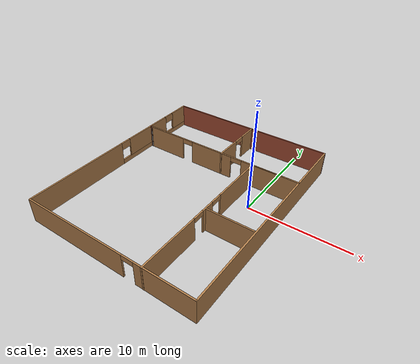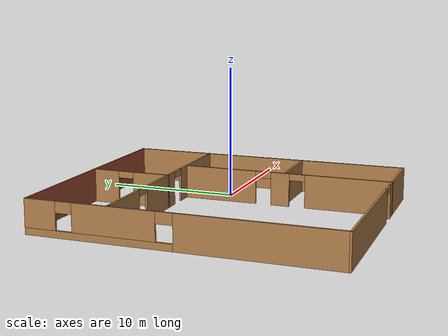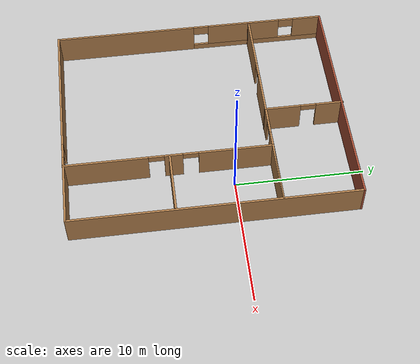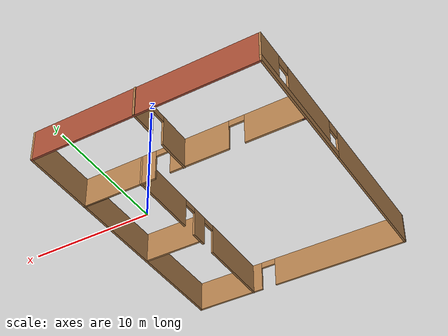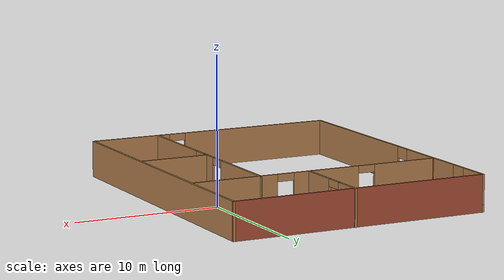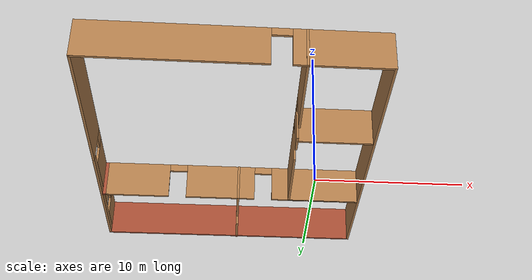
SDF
<?xml version='1.0'?>
<sdf version='1.6'>
  <model name='Apartment_plan'>
    <pose frame=''>-5.60454 -1.80062 0 0 -0 0</pose>
    <link name='Wall_11'>
      <collision name='Wall_11_Collision'>
        <geometry>
          <box>
            <size>18 0.15 2.5</size>
          </box>
        </geometry>
        <pose frame=''>0 0 1.25 0 -0 0</pose>
      </collision>
      <visual name='Wall_11_Visual'>
        <pose frame=''>0 0 1.25 0 -0 0</pose>
        <geometry>
          <box>
            <size>18 0.15 2.5</size>
          </box>
        </geometry>
        <material>
          <script>
            <uri>file://media/materials/scripts/gazebo.material</uri>
            <name>Gazebo/Bricks</name>
          </script>
          <ambient>0.996078 0.47451 0.0196078 1</ambient>
        </material>
        <meta>
          <layer>0</layer>
        </meta>
      </visual>
      <pose frame=''>0 10.9013 0 0 -0 0</pose>
    </link>
    <link name='Wall_13'>
      <collision name='Wall_13_Collision'>
        <geometry>
          <box>
            <size>22 0.15 2.5</size>
          </box>
        </geometry>
        <pose frame=''>0 0 1.25 0 -0 0</pose>
      </collision>
      <visual name='Wall_13_Visual'>
        <pose frame=''>0 0 1.25 0 -0 0</pose>
        <geometry>
          <box>
            <size>22 0.15 2.5</size>
          </box>
        </geometry>
        <material>
          <script>
            <uri>file://media/materials/scripts/gazebo.material</uri>
            <name>Gazebo/Wood</name>
          </script>
          <ambient>1 1 1 1</ambient>
        </material>
        <meta>
          <layer>0</layer>
        </meta>
      </visual>
      <pose frame=''>8.925 -0.023674 0 0 -0 1.5708</pose>
    </link>
    <link name='Wall_15'>
      <pose frame=''>4.04673 -3.03739 0 0 -0 1.5708</pose>
      <visual name='Wall_15_Visual_0'>
        <pose frame=''>-4.7743 0 1.25 0 -0 0</pose>
        <geometry>
          <box>
            <size>6.4514 0.15 2.5</size>
          </box>
        </geometry>
        <material>
          <script>
            <uri>file://media/materials/scripts/gazebo.material</uri>
            <name>Gazebo/Wood</name>
          </script>
          <ambient>1 1 1 1</ambient>
        </material>
        <meta>
          <layer>0</layer>
        </meta>
      </visual>
      <collision name='Wall_15_Collision_0'>
        <geometry>
          <box>
            <size>6.4514 0.15 2.5</size>
          </box>
        </geometry>
        <pose frame=''>-4.7743 0 1.25 0 -0 0</pose>
      </collision>
      <visual name='Wall_15_Visual_1'>
        <pose frame=''>0.354806 0 1.25 0 -0 0</pose>
        <geometry>
          <box>
            <size>1.40682 0.15 2.5</size>
          </box>
        </geometry>
        <material>
          <script>
            <uri>file://media/materials/scripts/gazebo.material</uri>
            <name>Gazebo/Wood</name>
          </script>
          <ambient>1 1 1 1</ambient>
        </material>
        <meta>
          <layer>0</layer>
        </meta>
      </visual>
      <collision name='Wall_15_Collision_1'>
        <geometry>
          <box>
            <size>1.40682 0.15 2.5</size>
          </box>
        </geometry>
        <pose frame=''>0.354806 0 1.25 0 -0 0</pose>
      </collision>
      <visual name='Wall_15_Visual_2'>
        <pose frame=''>5.12911 0 1.25 0 -0 0</pose>
        <geometry>
          <box>
            <size>5.74179 0.15 2.5</size>
          </box>
        </geometry>
        <material>
          <script>
            <uri>file://media/materials/scripts/gazebo.material</uri>
            <name>Gazebo/Wood</name>
          </script>
          <ambient>1 1 1 1</ambient>
        </material>
        <meta>
          <layer>0</layer>
        </meta>
      </visual>
      <collision name='Wall_15_Collision_2'>
        <geometry>
          <box>
            <size>5.74179 0.15 2.5</size>
          </box>
        </geometry>
        <pose frame=''>5.12911 0 1.25 0 -0 0</pose>
      </collision>
      <visual name='Wall_15_Visual_3'>
        <pose frame=''>-0.948604 0 2.25 0 -0 0</pose>
        <geometry>
          <box>
            <size>1.2 0.15 0.5</size>
          </box>
        </geometry>
        <material>
          <script>
            <uri>file://media/materials/scripts/gazebo.material</uri>
            <name>Gazebo/Wood</name>
          </script>
          <ambient>1 1 1 1</ambient>
        </material>
        <meta>
          <layer>0</layer>
        </meta>
      </visual>
      <collision name='Wall_15_Collision_3'>
        <geometry>
          <box>
            <size>1.2 0.15 0.5</size>
          </box>
        </geometry>
        <pose frame=''>-0.948604 0 2.25 0 -0 0</pose>
      </collision>
      <visual name='Wall_15_Visual_4'>
        <pose frame=''>1.65821 0 2.25 0 -0 0</pose>
        <geometry>
          <box>
            <size>1.2 0.15 0.5</size>
          </box>
        </geometry>
        <material>
          <script>
            <uri>file://media/materials/scripts/gazebo.material</uri>
            <name>Gazebo/Wood</name>
          </script>
          <ambient>1 1 1 1</ambient>
        </material>
        <meta>
          <layer>0</layer>
        </meta>
      </visual>
      <collision name='Wall_15_Collision_4'>
        <geometry>
          <box>
            <size>1.2 0.15 0.5</size>
          </box>
        </geometry>
        <pose frame=''>1.65821 0 2.25 0 -0 0</pose>
      </collision>
    </link>
    <link name='Wall_16'>
      <collision name='Wall_16_Collision'>
        <geometry>
          <box>
            <size>5 0.15 2.5</size>
          </box>
        </geometry>
        <pose frame=''>0 0 1.25 0 -0 0</pose>
      </collision>
      <visual name='Wall_16_Visual'>
        <pose frame=''>0 0 1.25 0 -0 0</pose>
        <geometry>
          <box>
            <size>5 0.15 2.5</size>
          </box>
        </geometry>
        <material>
          <script>
            <uri>file://media/materials/scripts/gazebo.material</uri>
            <name>Gazebo/Wood</name>
          </script>
          <ambient>1 1 1 1</ambient>
        </material>
        <meta>
          <layer>0</layer>
        </meta>
      </visual>
      <pose frame=''>6.47173 4.88761 0 0 -0 0</pose>
    </link>
    <link name='Wall_17'>
      <pose frame=''>0.096731 4.88761 0 0 -0 3.14159</pose>
      <visual name='Wall_17_Visual_0'>
        <pose frame=''>-5.80484 0 1.25 0 -0 0</pose>
        <geometry>
          <box>
            <size>6.14032 0.15 2.5</size>
          </box>
        </geometry>
        <material>
          <script>
            <uri>file://media/materials/scripts/gazebo.material</uri>
            <name>Gazebo/Wood</name>
          </script>
          <ambient>0.533333 0.541176 0.521569 1</ambient>
        </material>
        <meta>
          <layer>0</layer>
        </meta>
      </visual>
      <collision name='Wall_17_Collision_0'>
        <geometry>
          <box>
            <size>6.14032 0.15 2.5</size>
          </box>
        </geometry>
        <pose frame=''>-5.80484 0 1.25 0 -0 0</pose>
      </collision>
      <visual name='Wall_17_Visual_1'>
        <pose frame=''>0.844546 0 1.25 0 -0 0</pose>
        <geometry>
          <box>
            <size>4.75844 0.15 2.5</size>
          </box>
        </geometry>
        <material>
          <script>
            <uri>file://media/materials/scripts/gazebo.material</uri>
            <name>Gazebo/Wood</name>
          </script>
          <ambient>0.533333 0.541176 0.521569 1</ambient>
        </material>
        <meta>
          <layer>0</layer>
        </meta>
      </visual>
      <collision name='Wall_17_Collision_1'>
        <geometry>
          <box>
            <size>4.75844 0.15 2.5</size>
          </box>
        </geometry>
        <pose frame=''>0.844546 0 1.25 0 -0 0</pose>
      </collision>
      <visual name='Wall_17_Visual_2'>
        <pose frame=''>6.64938 0 1.25 0 -0 0</pose>
        <geometry>
          <box>
            <size>4.45123 0.15 2.5</size>
          </box>
        </geometry>
        <material>
          <script>
            <uri>file://media/materials/scripts/gazebo.material</uri>
            <name>Gazebo/Wood</name>
          </script>
          <ambient>0.533333 0.541176 0.521569 1</ambient>
        </material>
        <meta>
          <layer>0</layer>
        </meta>
      </visual>
      <collision name='Wall_17_Collision_2'>
        <geometry>
          <box>
            <size>4.45123 0.15 2.5</size>
          </box>
        </geometry>
        <pose frame=''>6.64938 0 1.25 0 -0 0</pose>
      </collision>
      <visual name='Wall_17_Visual_3'>
        <pose frame=''>-2.13468 0 2.25 0 -0 0</pose>
        <geometry>
          <box>
            <size>1.2 0.15 0.5</size>
          </box>
        </geometry>
        <material>
          <script>
            <uri>file://media/materials/scripts/gazebo.material</uri>
            <name>Gazebo/Wood</name>
          </script>
          <ambient>0.533333 0.541176 0.521569 1</ambient>
        </material>
        <meta>
          <layer>0</layer>
        </meta>
      </visual>
      <collision name='Wall_17_Collision_3'>
        <geometry>
          <box>
            <size>1.2 0.15 0.5</size>
          </box>
        </geometry>
        <pose frame=''>-2.13468 0 2.25 0 -0 0</pose>
      </collision>
      <visual name='Wall_17_Visual_4'>
        <pose frame=''>3.82377 0 2.25 0 -0 0</pose>
        <geometry>
          <box>
            <size>1.2 0.15 0.5</size>
          </box>
        </geometry>
        <material>
          <script>
            <uri>file://media/materials/scripts/gazebo.material</uri>
            <name>Gazebo/Wood</name>
          </script>
          <ambient>0.533333 0.541176 0.521569 1</ambient>
        </material>
        <meta>
          <layer>0</layer>
        </meta>
      </visual>
      <collision name='Wall_17_Collision_4'>
        <geometry>
          <box>
            <size>1.2 0.15 0.5</size>
          </box>
        </geometry>
        <pose frame=''>3.82377 0 2.25 0 -0 0</pose>
      </collision>
    </link>
    <link name='Wall_18'>
      <collision name='Wall_18_Collision'>
        <geometry>
          <box>
            <size>0.15 0.15 2.5</size>
          </box>
        </geometry>
        <pose frame=''>0 0 1.25 0 -0 0</pose>
      </collision>
      <visual name='Wall_18_Visual'>
        <pose frame=''>0 0 1.25 0 -0 0</pose>
        <geometry>
          <box>
            <size>0.15 0.15 2.5</size>
          </box>
        </geometry>
        <material>
          <script>
            <uri>file://media/materials/scripts/gazebo.material</uri>
            <name>Gazebo/Grey</name>
          </script>
          <ambient>1 1 1 1</ambient>
        </material>
        <meta>
          <layer>0</layer>
        </meta>
      </visual>
      <pose frame=''>-8.70327 4.88761 0 0 -0 0</pose>
    </link>
    <link name='Wall_19'>
      <collision name='Wall_19_Collision'>
        <geometry>
          <box>
            <size>0.25 0.15 2.5</size>
          </box>
        </geometry>
        <pose frame=''>0 0 1.25 0 -0 0</pose>
      </collision>
      <visual name='Wall_19_Visual'>
        <pose frame=''>0 0 1.25 0 -0 0</pose>
        <geometry>
          <box>
            <size>0.25 0.15 2.5</size>
          </box>
        </geometry>
        <material>
          <script>
            <uri>file://media/materials/scripts/gazebo.material</uri>
            <name>Gazebo/Bricks</name>
          </script>
          <ambient>1 1 1 1</ambient>
        </material>
        <meta>
          <layer>0</layer>
        </meta>
      </visual>
      <pose frame=''>-8.75327 4.88761 0 0 -0 3.14159</pose>
    </link>
    <link name='Wall_21'>
      <pose frame=''>0.498992 7.91239 0 0 -0 1.5708</pose>
      <visual name='Wall_21_Visual_0'>
        <pose frame=''>-1.69364 0 1.25 0 -0 0</pose>
        <geometry>
          <box>
            <size>2.86272 0.15 2.5</size>
          </box>
        </geometry>
        <material>
          <script>
            <uri>file://media/materials/scripts/gazebo.material</uri>
            <name>Gazebo/Wood</name>
          </script>
          <ambient>1 1 1 1</ambient>
        </material>
        <meta>
          <layer>0</layer>
        </meta>
      </visual>
      <collision name='Wall_21_Collision_0'>
        <geometry>
          <box>
            <size>2.86272 0.15 2.5</size>
          </box>
        </geometry>
        <pose frame=''>-1.69364 0 1.25 0 -0 0</pose>
      </collision>
      <visual name='Wall_21_Visual_1'>
        <pose frame=''>2.03136 0 1.25 0 -0 0</pose>
        <geometry>
          <box>
            <size>2.18729 0.15 2.5</size>
          </box>
        </geometry>
        <material>
          <script>
            <uri>file://media/materials/scripts/gazebo.material</uri>
            <name>Gazebo/Wood</name>
          </script>
          <ambient>1 1 1 1</ambient>
        </material>
        <meta>
          <layer>0</layer>
        </meta>
      </visual>
      <collision name='Wall_21_Collision_1'>
        <geometry>
          <box>
            <size>2.18729 0.15 2.5</size>
          </box>
        </geometry>
        <pose frame=''>2.03136 0 1.25 0 -0 0</pose>
      </collision>
      <visual name='Wall_21_Visual_2'>
        <pose frame=''>0.337715 0 2.25 0 -0 0</pose>
        <geometry>
          <box>
            <size>1.2 0.15 0.5</size>
          </box>
        </geometry>
        <material>
          <script>
            <uri>file://media/materials/scripts/gazebo.material</uri>
            <name>Gazebo/Wood</name>
          </script>
          <ambient>1 1 1 1</ambient>
        </material>
        <meta>
          <layer>0</layer>
        </meta>
      </visual>
      <collision name='Wall_21_Collision_2'>
        <geometry>
          <box>
            <size>1.2 0.15 0.5</size>
          </box>
        </geometry>
        <pose frame=''>0.337715 0 2.25 0 -0 0</pose>
      </collision>
    </link>
    <link name='Wall_23'>
      <collision name='Wall_23_Collision'>
        <geometry>
          <box>
            <size>4.75 0.15 2.5</size>
          </box>
        </geometry>
        <pose frame=''>0 0 1.25 0 -0 0</pose>
      </collision>
      <visual name='Wall_23_Visual'>
        <pose frame=''>0 0 1.25 0 -0 0</pose>
        <geometry>
          <box>
            <size>4.75 0.15 2.5</size>
          </box>
        </geometry>
        <material>
          <script>
            <uri>file://media/materials/scripts/gazebo.material</uri>
            <name>Gazebo/Wood</name>
          </script>
          <ambient>1 1 1 1</ambient>
        </material>
        <meta>
          <layer>0</layer>
        </meta>
      </visual>
      <pose frame=''>6.44662 -2.97518 0 0 -0 0</pose>
    </link>
    <link name='Wall_7'>
      <pose frame=''>0 -10.9487 0 0 -0 0</pose>
      <visual name='Wall_7_Visual_0'>
        <pose frame=''>-3.4981 0 1.25 0 -0 0</pose>
        <geometry>
          <box>
            <size>11.0038 0.15 2.5</size>
          </box>
        </geometry>
        <material>
          <script>
            <uri>file://media/materials/scripts/gazebo.material</uri>
            <name>Gazebo/Wood</name>
          </script>
          <ambient>1 1 1 1</ambient>
        </material>
        <meta>
          <layer>0</layer>
        </meta>
      </visual>
      <collision name='Wall_7_Collision_0'>
        <geometry>
          <box>
            <size>11.0038 0.15 2.5</size>
          </box>
        </geometry>
        <pose frame=''>-3.4981 0 1.25 0 -0 0</pose>
      </collision>
      <visual name='Wall_7_Visual_1'>
        <pose frame=''>6.10191 0 1.25 0 -0 0</pose>
        <geometry>
          <box>
            <size>5.79619 0.15 2.5</size>
          </box>
        </geometry>
        <material>
          <script>
            <uri>file://media/materials/scripts/gazebo.material</uri>
            <name>Gazebo/Wood</name>
          </script>
          <ambient>1 1 1 1</ambient>
        </material>
        <meta>
          <layer>0</layer>
        </meta>
      </visual>
      <collision name='Wall_7_Collision_1'>
        <geometry>
          <box>
            <size>5.79619 0.15 2.5</size>
          </box>
        </geometry>
        <pose frame=''>6.10191 0 1.25 0 -0 0</pose>
      </collision>
      <visual name='Wall_7_Visual_2'>
        <pose frame=''>2.60381 0 2.25 0 -0 0</pose>
        <geometry>
          <box>
            <size>1.2 0.15 0.5</size>
          </box>
        </geometry>
        <material>
          <script>
            <uri>file://media/materials/scripts/gazebo.material</uri>
            <name>Gazebo/Wood</name>
          </script>
          <ambient>1 1 1 1</ambient>
        </material>
        <meta>
          <layer>0</layer>
        </meta>
      </visual>
      <collision name='Wall_7_Collision_2'>
        <geometry>
          <box>
            <size>1.2 0.15 0.5</size>
          </box>
        </geometry>
        <pose frame=''>2.60381 0 2.25 0 -0 0</pose>
      </collision>
    </link>
    <link name='Wall_9'>
      <pose frame=''>-8.925 -0.023674 0 0 -0 1.5708</pose>
      <visual name='Wall_9_Visual_0'>
        <pose frame=''>-5.35285 0 1.25 0 -0 0</pose>
        <geometry>
          <box>
            <size>11.2943 0.15 2.5</size>
          </box>
        </geometry>
        <material>
          <script>
            <uri>file://media/materials/scripts/gazebo.material</uri>
            <name>Gazebo/Wood</name>
          </script>
          <ambient>0.533333 0.541176 0.521569 1</ambient>
        </material>
        <meta>
          <layer>0</layer>
        </meta>
      </visual>
      <collision name='Wall_9_Collision_0'>
        <geometry>
          <box>
            <size>11.2943 0.15 2.5</size>
          </box>
        </geometry>
        <pose frame=''>-5.35285 0 1.25 0 -0 0</pose>
      </collision>
      <visual name='Wall_9_Visual_1'>
        <pose frame=''>5.64715 0 0.25 0 -0 0</pose>
        <geometry>
          <box>
            <size>10.7057 0.15 0.5</size>
          </box>
        </geometry>
        <material>
          <script>
            <uri>file://media/materials/scripts/gazebo.material</uri>
            <name>Gazebo/Wood</name>
          </script>
          <ambient>0.533333 0.541176 0.521569 1</ambient>
        </material>
        <meta>
          <layer>0</layer>
        </meta>
      </visual>
      <collision name='Wall_9_Collision_1'>
        <geometry>
          <box>
            <size>10.7057 0.15 0.5</size>
          </box>
        </geometry>
        <pose frame=''>5.64715 0 0.25 0 -0 0</pose>
      </collision>
      <visual name='Wall_9_Visual_2'>
        <pose frame=''>4.47763 0 1.5 0 -0 0</pose>
        <geometry>
          <box>
            <size>5.96668 0.15 2</size>
          </box>
        </geometry>
        <material>
          <script>
            <uri>file://media/materials/scripts/gazebo.material</uri>
            <name>Gazebo/Wood</name>
          </script>
          <ambient>0.533333 0.541176 0.521569 1</ambient>
        </material>
        <meta>
          <layer>0</layer>
        </meta>
      </visual>
      <collision name='Wall_9_Collision_2'>
        <geometry>
          <box>
            <size>5.96668 0.15 2</size>
          </box>
        </geometry>
        <pose frame=''>4.47763 0 1.5 0 -0 0</pose>
      </collision>
      <visual name='Wall_9_Visual_3'>
        <pose frame=''>9.83049 0 1.5 0 -0 0</pose>
        <geometry>
          <box>
            <size>2.33903 0.15 2</size>
          </box>
        </geometry>
        <material>
          <script>
            <uri>file://media/materials/scripts/gazebo.material</uri>
            <name>Gazebo/Wood</name>
          </script>
          <ambient>0.533333 0.541176 0.521569 1</ambient>
        </material>
        <meta>
          <layer>0</layer>
        </meta>
      </visual>
      <collision name='Wall_9_Collision_3'>
        <geometry>
          <box>
            <size>2.33903 0.15 2</size>
          </box>
        </geometry>
        <pose frame=''>9.83049 0 1.5 0 -0 0</pose>
      </collision>
      <visual name='Wall_9_Visual_4'>
        <pose frame=''>0.894292 0 2.1 0 -0 0</pose>
        <geometry>
          <box>
            <size>1.2 0.15 0.8</size>
          </box>
        </geometry>
        <material>
          <script>
            <uri>file://media/materials/scripts/gazebo.material</uri>
            <name>Gazebo/Wood</name>
          </script>
          <ambient>0.533333 0.541176 0.521569 1</ambient>
        </material>
        <meta>
          <layer>0</layer>
        </meta>
      </visual>
      <collision name='Wall_9_Collision_4'>
        <geometry>
          <box>
            <size>1.2 0.15 0.8</size>
          </box>
        </geometry>
        <pose frame=''>0.894292 0 2.1 0 -0 0</pose>
      </collision>
      <visual name='Wall_9_Visual_5'>
        <pose frame=''>8.06097 0 2.1 0 -0 0</pose>
        <geometry>
          <box>
            <size>1.2 0.15 0.8</size>
          </box>
        </geometry>
        <material>
          <script>
            <uri>file://media/materials/scripts/gazebo.material</uri>
            <name>Gazebo/Wood</name>
          </script>
          <ambient>0.533333 0.541176 0.521569 1</ambient>
        </material>
        <meta>
          <layer>0</layer>
        </meta>
      </visual>
      <collision name='Wall_9_Collision_5'>
        <geometry>
          <box>
            <size>1.2 0.15 0.8</size>
          </box>
        </geometry>
        <pose frame=''>8.06097 0 2.1 0 -0 0</pose>
      </collision>
    </link>
    <static>1</static>
  </model>
</sdf>
